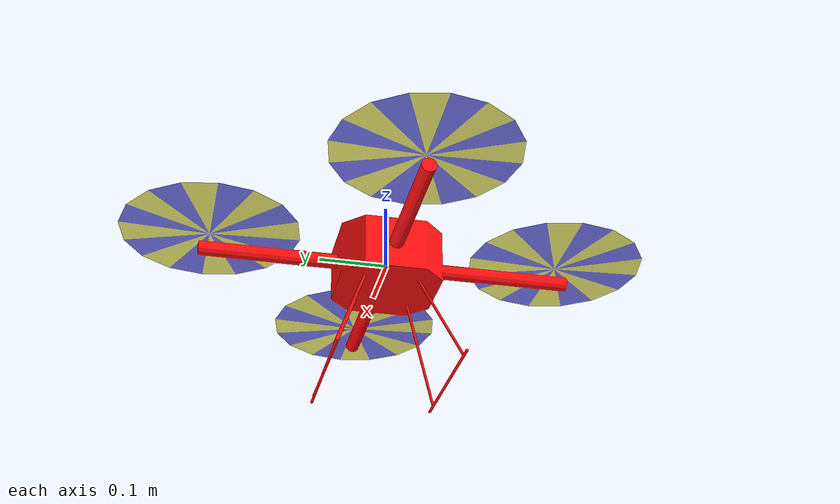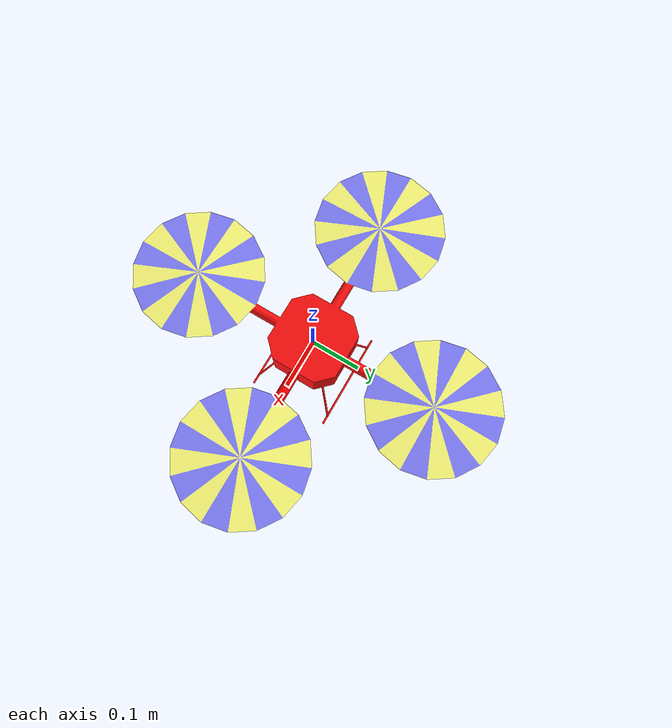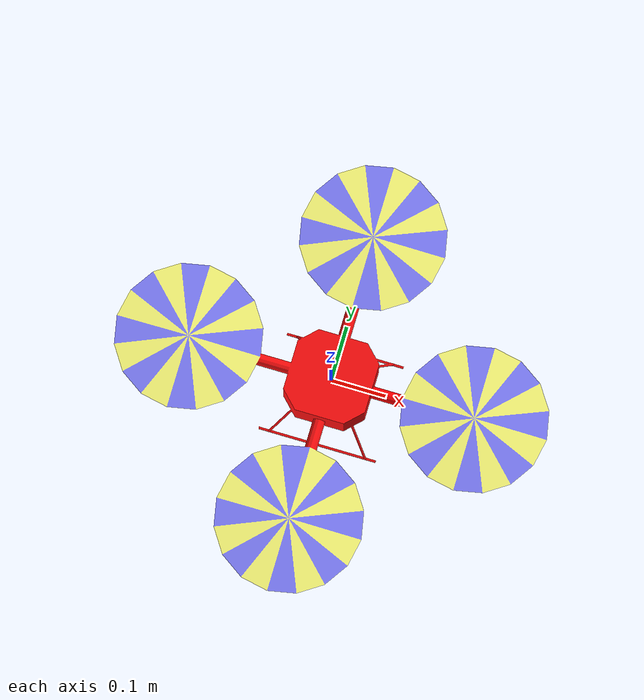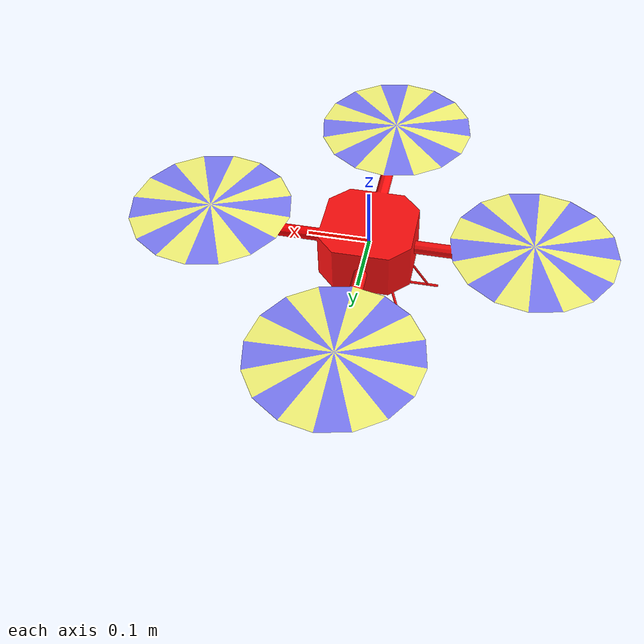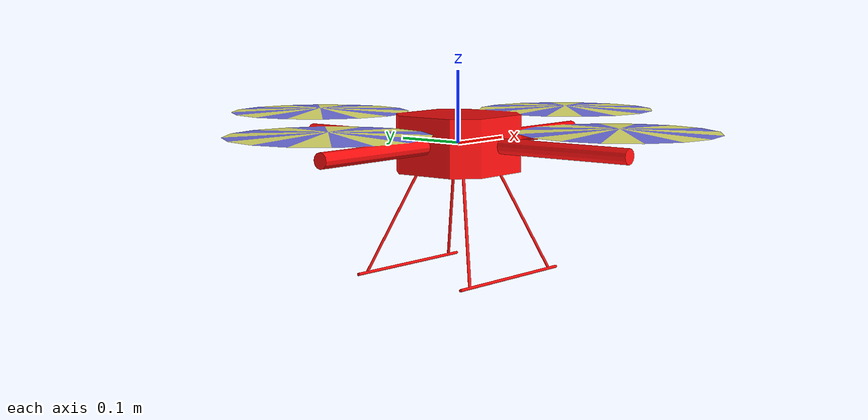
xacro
<?xml version="1.0"?>

<robot
  name="quadrotor"
  xmlns:xacro="http://www.ros.org/wiki/xacro"
>
    <xacro:property name="M_PI" value="3.1415926535897931" />

    <!-- Included URDF Files -->
    <xacro:include filename="$(find hector_quadrotor_description)/urdf/quadrotor_base.urdf.xacro" />
    <!-- Instantiate quadrotor_base_macro once (has no parameters atm) -->
    <xacro:quadrotor_base_macro />

</robot>

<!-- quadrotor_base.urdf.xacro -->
<robot xmlns:xacro="http://www.ros.org/wiki/xacro">

  <xacro:property name="pi" value="3.1415926535897931" />

  <!-- Main quadrotor link -->
  <xacro:macro name="quadrotor_base_macro">
    <link name="base_link">
      <inertial>
        <mass value="1.477" />
        <origin xyz="0 0 0" />
        <inertia ixx="0.01152" ixy="0.0" ixz="0.0" iyy="0.01152" iyz="0.0" izz="0.0218" />
      </inertial>

      <visual>
        <origin xyz="0 0 0" rpy="0 0 0" />
        <geometry>
          <mesh filename="package://hector_quadrotor_description/meshes/quadrotor/quadrotor_base.dae"/>
        </geometry>
      </visual>

      <collision>
        <origin xyz="0 0 0" rpy="0 0 0" />
        <geometry>
          <mesh filename="package://hector_quadrotor_description/meshes/quadrotor/quadrotor_base.stl"/>
        </geometry>
      </collision>
    </link>

    <!-- Sonar height sensor -->

  </xacro:macro>
</robot>
